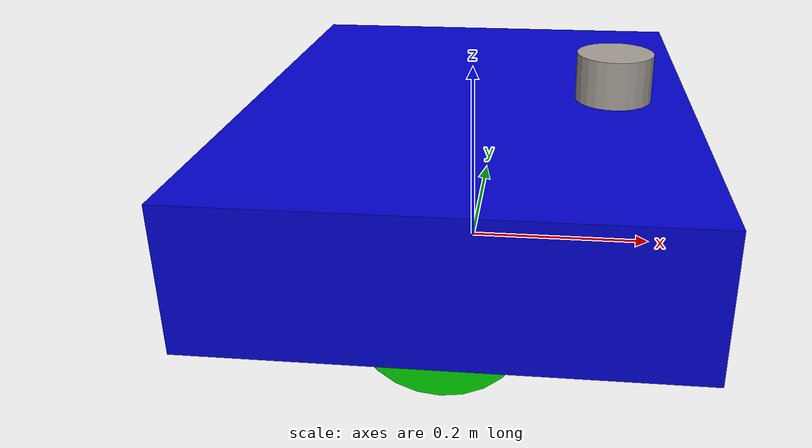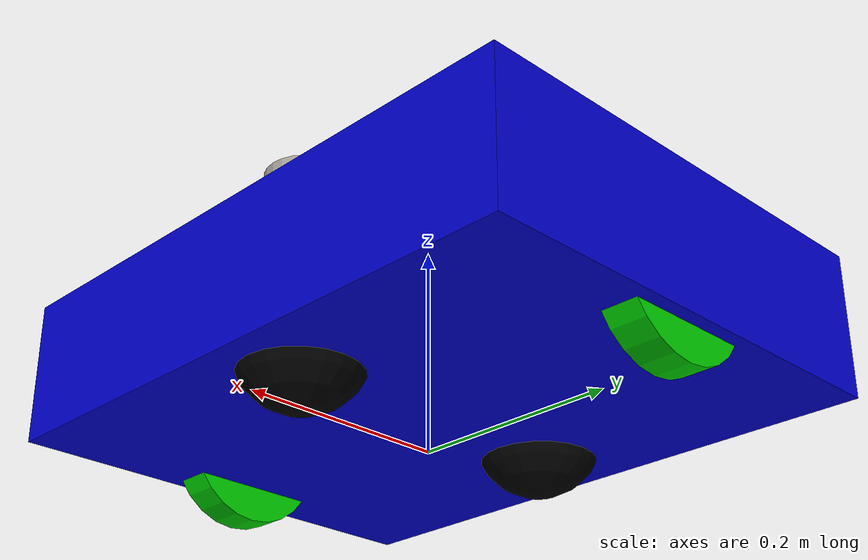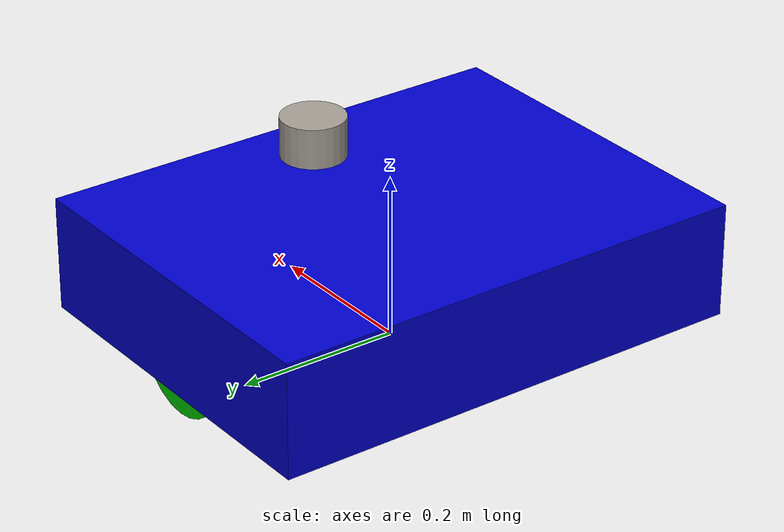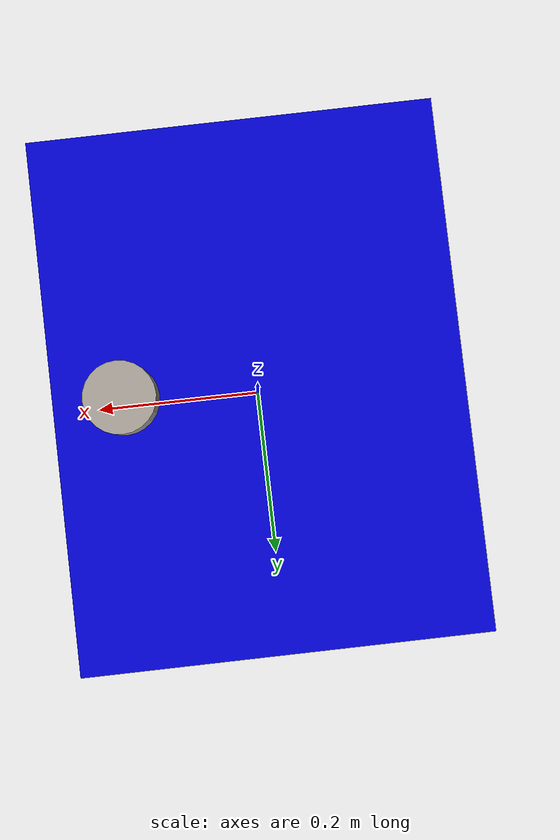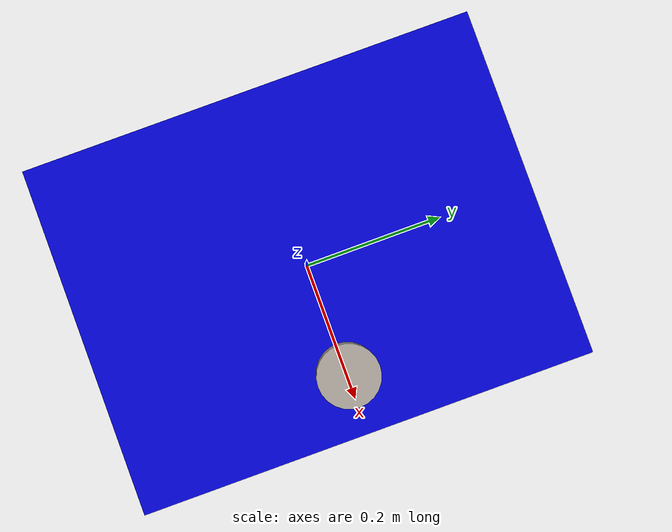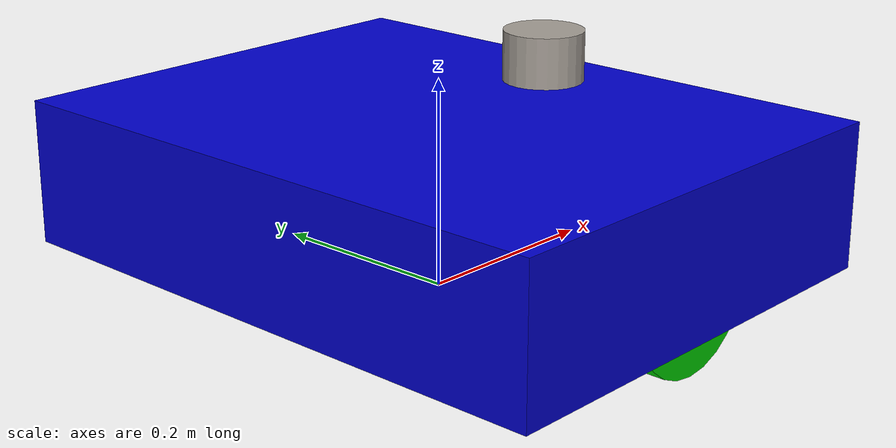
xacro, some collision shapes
<?xml version="1.0"?>
<robot name="val2sim"
  xmlns:xacro="http://ros.org/wiki/xacro">

  <xacro:include filename="$(find val2sim_model)/materials/materials.xacro"/>
  <xacro:include filename="$(find val2sim_model)/sensors/ydlidar/ydlidar_g4.xacro"/>
  <xacro:include filename="$(find val2sim_gazebo)/plugins/val2_diffdrive_plugins.xacro"/>

  <xacro:property name="base_width" value="0.60"/>
  <xacro:property name="base_len" value="0.46"/>
  <xacro:property name="wheel_radius" value="0.075"/>
  <xacro:property name="base_wheel_gap" value="0.007"/>
  <xacro:property name="wheel_separation" value="0.525"/>
  <xacro:property name="wheel_joint_offset" value="0.0"/>
  <xacro:property name="caster_wheel_radius" value="0.0635"/>
  <xacro:property name="caster_z_offset" value="-0.01640"/>
  <xacro:property name="caster_wheel_joint_offset" value="0.00"/>

  <xacro:macro name="box_inertia" params="m w h d">
    <inertial>
      <mass value="${m}"/>
      <inertia ixx="${m / 12.0 * (d*d + h*h)}" ixy="0.0" ixz="0.0" iyy="${m / 12.0 * (w*w + h*h)}" iyz="0.0" izz="${m / 12.0 * (w*w + d*d)}"/>
    </inertial>
  </xacro:macro>

  <link name="base_footprint">
    <visual>
        <origin xyz="0 0 0" rpy="0 0 0" />
        <geometry>
            <box size="0.001 0.001 0.001" />
        </geometry>
    </visual>
    <collision>
        <origin xyz="0 0 0" rpy="0 0 0" />
        <geometry>
            <box size="0.001 0.001 0.001" />
        </geometry>
    </collision>
  </link>

  <link name="base_link">

    <xacro:box_inertia m="10" w="${base_len}" h="${base_width}" d="0.01"/>
    <visual>
      <origin rpy="0 0 0" xyz="0.0 0 0.025"/>
      <geometry>
        <box size="${base_len} ${base_width} 0.14"/>
      </geometry>
      <material name="blue"/>
    </visual>
    <collision>
      <origin rpy="0 0 0" xyz="0.0 0 0.025"/>
      <geometry>
        <box size="${base_len} ${base_width} 0.14"/>
      </geometry>
    </collision>

    <collision name="caster_front_collision">
        <origin rpy="0 0 0" xyz="0.150 0.0 ${caster_z_offset}"/>
        <geometry>
          <sphere radius="${caster_wheel_radius}"/>
        </geometry>
        <surface>
          <friction>
            <ode>
              <mu>0</mu>
              <mu2>0</mu2>
              <slip1>1.0</slip1>
              <slip2>1.0</slip2>
            </ode>
          </friction>
        </surface>
    </collision>
    <visual name="caster_front_visual">
        <origin rpy=" 0 0 0" xyz="0.150 0.0 ${caster_z_offset}"/>
        <geometry>
          <sphere radius="${caster_wheel_radius}"/>
        </geometry>
        <material name="black"/>
    </visual>

    <collision name="caster_back_collision">
      <origin rpy="0 0 0" xyz="-0.150 0.0 ${caster_z_offset}"/>
      <geometry>
        <sphere radius="${caster_wheel_radius}"/>
      </geometry>
      <surface>
        <friction>
          <ode>
            <mu>0</mu>
            <mu2>0</mu2>
            <slip1>1.0</slip1>
            <slip2>1.0</slip2>
          </ode>
        </friction>
      </surface>
    </collision>

    <visual name="caster_back_visual">
      <origin rpy="0 0 0" xyz="-0.150 0.0 ${caster_z_offset}"/>
      <geometry>
        <sphere radius="${caster_wheel_radius}"/>
      </geometry>
      <material name="black"/>
    </visual>

  </link>

  <joint name="base_link_joint" type="fixed">
    <origin xyz="0.0 0 ${wheel_radius}" rpy="0 0 0" />
    <parent link="base_footprint"/>
    <child link="base_link" />
  </joint>

  <xacro:macro name="cylinder_inertia" params="m r h">
    <inertial>
      <mass value="${m}"/>
      <inertia ixx="${m*(3*r*r+h*h)/12}" ixy = "0" ixz = "0" iyy="${m*(3*r*r+h*h)/12}" iyz = "0" izz="${m*r*r/2}"/>
    </inertial>
  </xacro:macro>

  <xacro:macro name="wheel" params="prefix reflect">
    <link name="${prefix}_wheel">
      <visual>
        <origin xyz="0 0 0" rpy="${pi/2} 0 0"/>
        <geometry>
          <cylinder radius="${wheel_radius}" length="0.035"/>
        </geometry>
        <material name="green"/>
      </visual>
      <collision>
        <origin xyz="0 0 0" rpy="${pi/2} 0 0"/>
        <geometry>
          <cylinder radius="${wheel_radius}" length="0.035"/>
        </geometry>
      </collision>
      <xacro:cylinder_inertia m="10" r="${wheel_radius}" h="0.005"/>
    </link>

    <joint name="${prefix}_wheel_joint" type="continuous">
      <axis xyz="0 1 0" rpy="0 0 0" />
      <parent link="base_link"/>
      <child link="${prefix}_wheel"/>
      <origin xyz="${wheel_joint_offset} ${((wheel_separation/2)+base_wheel_gap)*reflect} -0.005" rpy="0 0 0"/>
    </joint>
  </xacro:macro>

  <xacro:wheel prefix="left" reflect="1"/>
  <xacro:wheel prefix="right" reflect="-1"/>

  <xacro:macro name="sphere_inertia" params="m r">
    <inertial>
      <mass value="${m}"/>
      <inertia ixx="${2.0*m*(r*r)/5.0}" ixy="0.0" ixz="0.0" iyy="${2.0*m*(r*r)/5.0}" iyz="0.0" izz="${2.0*m*(r*r)/5.0}"/>
    </inertial>
  </xacro:macro>

  <xacro:ydlidar_g4 prefix="laser" parent="base_link" prefix_topic='' visual='true' min_angle="-${PI}" max_angle="${PI}" min_range="0.26" max_range="12.0">
    <origin xyz="0.15 0 0.10" rpy="0 0 0"/>
  </xacro:ydlidar_g4>

</robot>

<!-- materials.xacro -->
<robot name="materials"
    xmlns:xacro="http://ros.org/wiki/xacro">

    <xacro:property name="PI" value="3.14159"/>

    <material name="black">
        <color rgba="0.0 0.0 0.0 1.0"/>
    </material>
    <material name="light_black">
        <color rgba="0.64706 0.61961 0.58824 1"/>
    </material>
    <material name="blue">
        <color rgba="0.0 0.0 0.8 1.0"/>
    </material>
    <material name="green">
        <color rgba="0.0 0.8 0.0 1.0"/>
    </material>
    <material name="grey">
        <color rgba="0.2 0.2 0.2 1.0"/>
    </material>
    <material name="orange">
        <color rgba="${255/255} ${108/255} ${10/255} 1.0"/>
    </material>
    <material name="brown">
        <color rgba="${222/255} ${207/255} ${195/255} 1.0"/>
    </material>
    <material name="red">
        <color rgba="0.8 0.0 0.0 1.0"/>
    </material>
    <material name="white">
        <color rgba="1.0 1.0 1.0 1.0"/>
    </material>

    <material name="aluminum">
        <color rgba="0.5 0.5 0.5 1.0"/>
    </material>

</robot>

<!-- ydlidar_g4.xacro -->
<robot name="ydlidar_g4"
    xmlns:xacro="http://ros.org/wiki/xacro">

    <xacro:macro name="ydlidar_g4" params="prefix parent prefix_topic *origin visual min_angle max_angle min_range:=0.26 max_range:=16.0">
        <joint name="${prefix}_base_fixed" type="fixed">
            <xacro:insert_block name="origin"/>
            <parent link="${parent}"/>
            <child link="${prefix}_base_link"/>
        </joint>

        <link name="${prefix}_base_link">
            <visual>
                <origin xyz="0 0 0" rpy="0 0 0"/>
                <geometry>
                    <mesh filename="package://val2sim_model/sensors/ydlidar/meshes/ydlidar_g4.dae" />
                </geometry>
                <material name="light_black"/>
            </visual>
            <collision>
                <origin xyz="0 0 0.02" rpy="0 0 0"/>
                <geometry>
                    <cylinder length="0.05" radius="0.040"/>
                </geometry>
            </collision>
            <inertial>
                <origin xyz="-0.00029774 0.0066667 0.00013047" rpy="0 0 0"/>
                <mass value="0.15717" />
                <inertia ixx="6.7885E-05" ixy="-1.3987E-07" ixz="-8.1554E-07" iyy="0.00013173" iyz="-9.0932E-08" izz="7.1972E-05"/>
            </inertial>
        </link>
        <joint name="${prefix}_fixed" type="fixed">
            <origin xyz="0 0 0.03172" rpy="0 0 0"/>
            <parent link="${prefix}_base_link"/>
            <child link="${prefix}_frame"/>
        </joint>

        <link name="${prefix}_frame">
            <inertial>
                <origin xyz="-0.00036659 0.00064155 -0.00027052" rpy="0 0 0" />
                <mass value="0.25482" />
                <inertia ixx="8.9194E-05" ixy="1.8116E-07" ixz="3.6435E-08" iyy="0.00018279" iyz="2.423E-07" izz="0.00011103" />
            </inertial>
        </link>

        <gazebo reference="${prefix}_frame">
            <sensor type="ray" name="${prefix}_sensor">
                <pose>0 0 0 0 0 0</pose>
                <visualize>${visual}</visualize>
                <update_rate>20</update_rate>
                <ray>
                    <scan>
                        <horizontal>
                            <!-- 180 deg -> 640 -->
                            <samples>${(max_angle-min_angle)*203.78}</samples>
                            <resolution>1</resolution>
                            <min_angle>${min_angle}</min_angle>
                            <max_angle>${max_angle}</max_angle>
                        </horizontal>
                    </scan>
                    <range>
                        <min>${min_range}</min>
                        <max>${max_range}</max>
                        <resolution>0.03</resolution>
                    </range>
                    <noise>
                        <type>gaussian</type>
                        <mean>0.0</mean>
                        <stddev>0.005</stddev>
                    </noise>
                </ray>
                <plugin name="${prefix}_gazebo_plugin" filename="libgazebo_ros_laser.so">
                    <robotNamespace>val2</robotNamespace>
                    <topicName>${prefix_topic}/scan</topicName>
                    <frameName>${prefix_topic}/laser_frame</frameName>
                </plugin>
            </sensor>
        </gazebo>
    </xacro:macro>

</robot>
